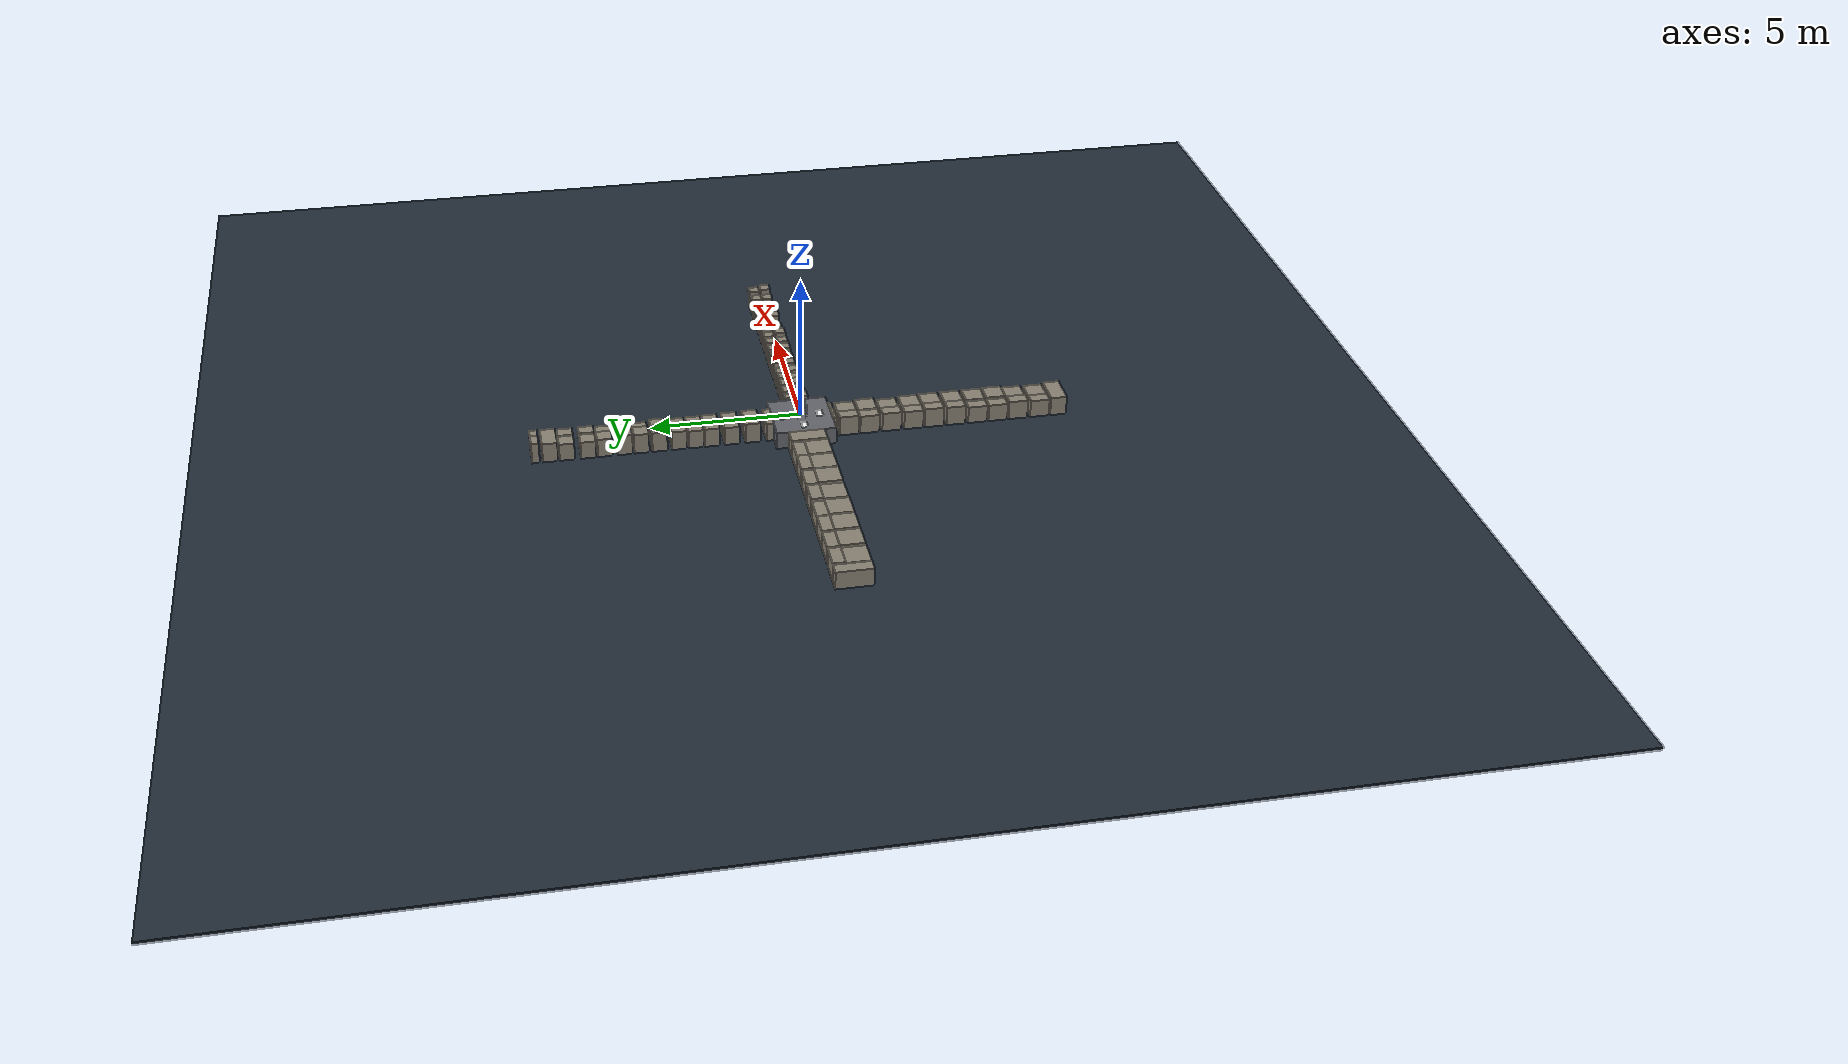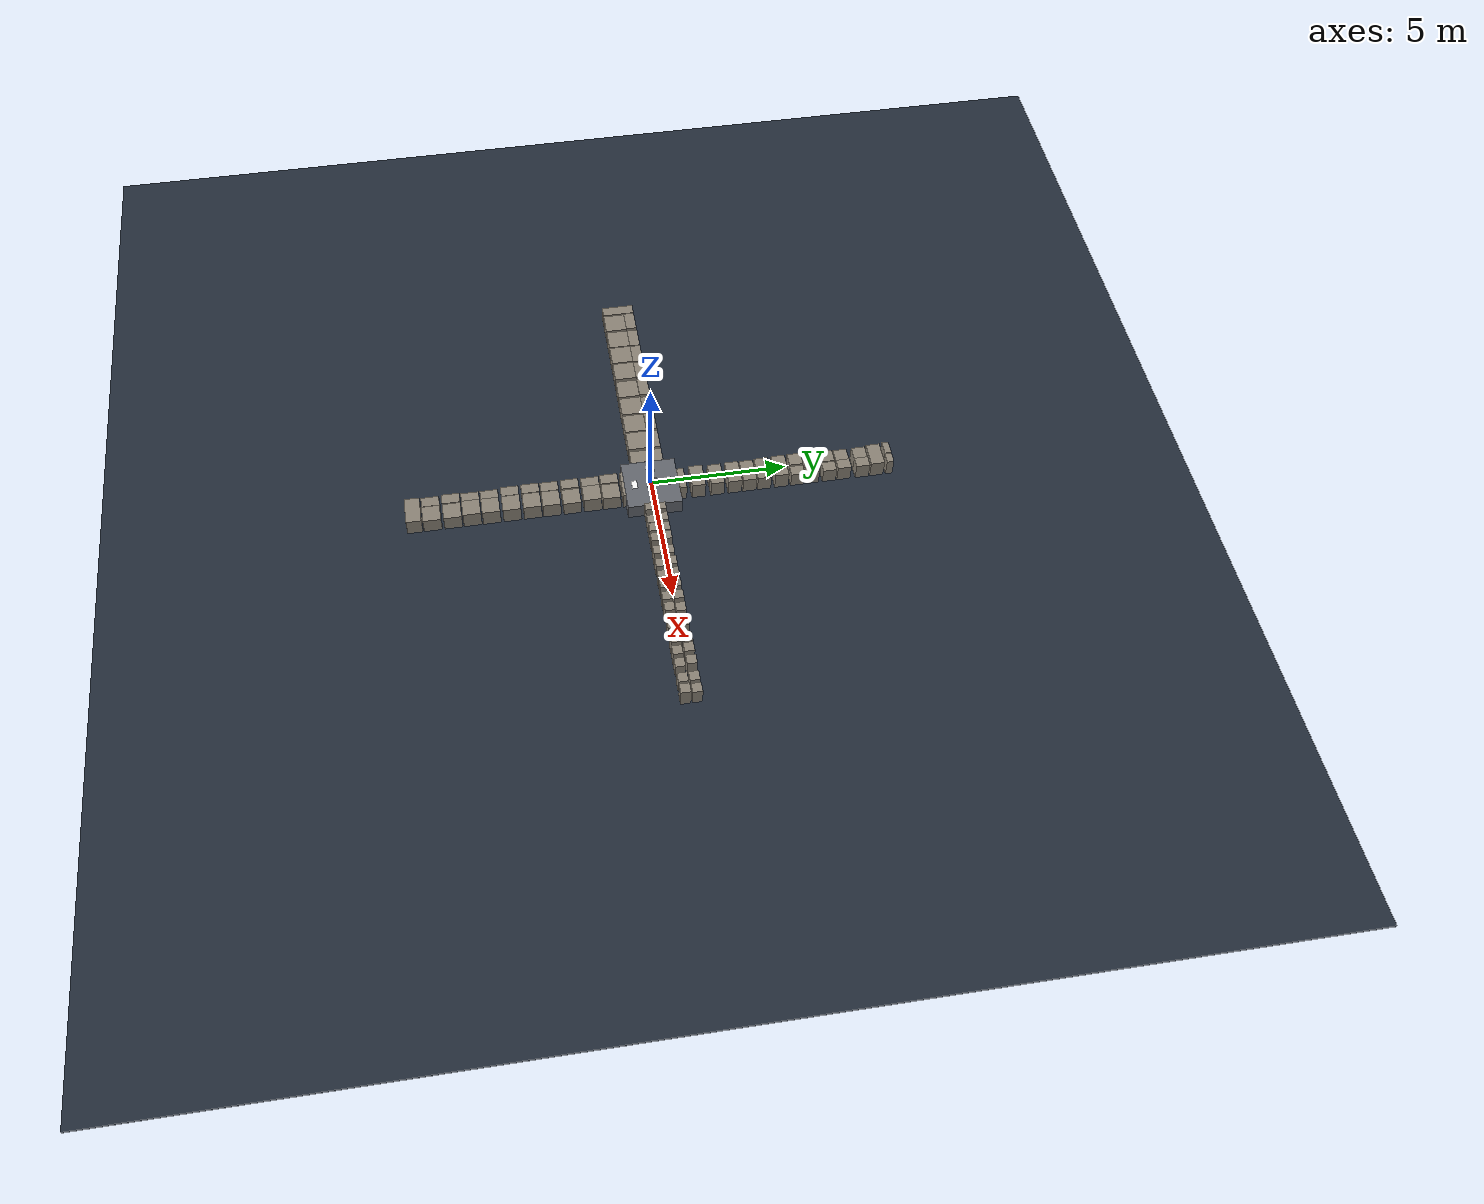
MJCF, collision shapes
<mujoco model="two_row_stones_cross_1_4_7_10">
  <include file="go2.xml"/>
  <statistic center="0 0 0.12" extent="1.35" />
  <visual>
    <headlight diffuse="0.6 0.6 0.6" ambient="0.3 0.3 0.3" specular="0 0 0" />
    <rgba haze="0.15 0.25 0.35 1" />
    <global azimuth="-130" elevation="-20" />
  </visual>
  <asset>
    <texture type="skybox" builtin="gradient" rgb1="0.3 0.5 0.7" rgb2="0 0 0" width="512" height="3072" />
    <texture type="2d" name="groundplane" builtin="checker" mark="edge" rgb1="0.18 0.22 0.28" rgb2="0.10 0.14 0.18" markrgb="0.8 0.8 0.8" width="300" height="300" />
    <material name="groundplane" texture="groundplane" texuniform="true" texrepeat="5 5" reflectance="0.0" />
    <texture name="tex_label_1" type="2d" file="./imgs/label_1.png" />
    <material name="mat_label_1" texture="tex_label_1" specular="0" shininess="0" emission="1" texrepeat="1 1" rgba="1 1 1 1" />
    <texture name="tex_label_7" type="2d" file="./imgs/label_7.png" />
    <material name="mat_label_7" texture="tex_label_7" specular="0" shininess="0" emission="1" texrepeat="1 1" rgba="1 1 1 1" />
    <texture name="tex_label_10" type="2d" file="./imgs/label_10.png" />
    <material name="mat_label_10" texture="tex_label_10" specular="0" shininess="0" emission="1" texrepeat="1 1" rgba="1 1 1 1" />
    <texture name="tex_label_4" type="2d" file="./imgs/label_4.png" />
    <material name="mat_label_4" texture="tex_label_4" specular="0" shininess="0" emission="1" texrepeat="1 1" rgba="1 1 1 1" />
  </asset>
  <worldbody>
    <light pos="0 0 1.5" dir="0 0 -1" directional="true" />

    <geom name="pit_floor" pos="0 0 -0.65" size="20 20 0.05" type="box" material="groundplane" />
    <geom name="hub" pos="0 0 -0.3" type="box" size="1.0 1.0 0.3" rgba="0.40 0.41 0.44 1" />

    <!-- neg_x direction, level 1, curriculum row 0, difficulty=0.0, stone_size=0.80m, gap choices=1..2 cells -->
    <geom name="neg_x_stone_01_merged" pos="-1.275 0 -0.2975" type="box" size="0.275 0.6 0.3025" rgba="0.55 0.52 0.47 1" />
    <geom name="neg_x_stone_02_row_a" pos="-2.05 0.4 -0.2975" type="box" size="0.4 0.2 0.3025" rgba="0.55 0.52 0.47 1" />
    <geom name="neg_x_stone_03_row_b" pos="-2.05 -0.2 -0.29" type="box" size="0.4 0.4 0.31" rgba="0.55 0.52 0.47 1" />
    <geom name="neg_x_stone_04_row_a" pos="-2.9 0.4 -0.2825" type="box" size="0.4 0.2 0.3175" rgba="0.55 0.52 0.47 1" />
    <geom name="neg_x_stone_05_row_b" pos="-2.9 -0.2 -0.29" type="box" size="0.4 0.4 0.31" rgba="0.55 0.52 0.47 1" />
    <geom name="neg_x_stone_06_row_a" pos="-3.75 0.4 -0.2975" type="box" size="0.4 0.2 0.3025" rgba="0.55 0.52 0.47 1" />
    <geom name="neg_x_stone_07_row_b" pos="-3.75 -0.2 -0.2825" type="box" size="0.4 0.4 0.3175" rgba="0.55 0.52 0.47 1" />
    <geom name="neg_x_stone_08_row_a" pos="-4.65 0.4 -0.2825" type="box" size="0.4 0.2 0.3175" rgba="0.55 0.52 0.47 1" />
    <geom name="neg_x_stone_09_row_b" pos="-4.65 -0.2 -0.2975" type="box" size="0.4 0.4 0.3025" rgba="0.55 0.52 0.47 1" />
    <geom name="neg_x_stone_10_row_a" pos="-5.55 0.4 -0.2975" type="box" size="0.4 0.2 0.3025" rgba="0.55 0.52 0.47 1" />
    <geom name="neg_x_stone_11_row_b" pos="-5.55 -0.2 -0.2825" type="box" size="0.4 0.4 0.3175" rgba="0.55 0.52 0.47 1" />
    <geom name="neg_x_stone_12_row_a" pos="-6.4 0.4 -0.29" type="box" size="0.4 0.2 0.31" rgba="0.55 0.52 0.47 1" />
    <geom name="neg_x_stone_13_row_b" pos="-6.4 -0.2 -0.2825" type="box" size="0.4 0.4 0.3175" rgba="0.55 0.52 0.47 1" />
    <geom name="neg_x_stone_14_row_a" pos="-7.25 0.4 -0.2975" type="box" size="0.4 0.2 0.3025" rgba="0.55 0.52 0.47 1" />
    <geom name="neg_x_stone_15_row_b" pos="-7.25 -0.2 -0.29" type="box" size="0.4 0.4 0.31" rgba="0.55 0.52 0.47 1" />
    <geom name="neg_x_stone_16_row_a" pos="-8.15 0.4 -0.2825" type="box" size="0.4 0.2 0.3175" rgba="0.55 0.52 0.47 1" />
    <geom name="neg_x_stone_17_row_b" pos="-8.15 -0.2 -0.2975" type="box" size="0.4 0.4 0.3025" rgba="0.55 0.52 0.47 1" />
    <geom name="neg_x_stone_18_merged" pos="-8.8 0 -0.29" type="box" size="0.2 0.6 0.31" rgba="0.55 0.52 0.47 1" />
    <geom name="neg_x_label" pos="-0.62 0 0.002" type="box" size="0.18 0.1 0.0001" material="mat_label_1" contype="0" conaffinity="0" group="1" rgba="1 1 1 1" />

    <!-- pos_y direction, level 7, curriculum row 6, difficulty=0.6, stone_size=0.50m, gap choices=1..4 cells -->
    <geom name="pos_y_stone_01_row_a" pos="0.25 1.125 -0.2675" type="box" size="0.2 0.125 0.3325" rgba="0.55 0.52 0.47 1" />
    <geom name="pos_y_stone_02_row_b" pos="-0.2 1.125 -0.275" type="box" size="0.25 0.125 0.325" rgba="0.55 0.52 0.47 1" />
    <geom name="pos_y_stone_03_row_a" pos="0.25 1.7 -0.2525" type="box" size="0.2 0.25 0.3475" rgba="0.55 0.52 0.47 1" />
    <geom name="pos_y_stone_04_row_b" pos="-0.2 1.7 -0.245" type="box" size="0.25 0.25 0.355" rgba="0.55 0.52 0.47 1" />
    <geom name="pos_y_stone_05_row_a" pos="0.25 2.4 -0.26" type="box" size="0.2 0.25 0.34" rgba="0.55 0.52 0.47 1" />
    <geom name="pos_y_stone_06_row_b" pos="-0.2 2.4 -0.275" type="box" size="0.25 0.25 0.325" rgba="0.55 0.52 0.47 1" />
    <geom name="pos_y_stone_07_merged" pos="0 3.05 -0.2675" type="box" size="0.45 0.25 0.3325" rgba="0.55 0.52 0.47 1" />
    <geom name="pos_y_stone_08_merged" pos="0 3.6 -0.275" type="box" size="0.45 0.25 0.325" rgba="0.55 0.52 0.47 1" />
    <geom name="pos_y_stone_09_row_a" pos="0.25 4.15 -0.275" type="box" size="0.2 0.25 0.325" rgba="0.55 0.52 0.47 1" />
    <geom name="pos_y_stone_10_row_b" pos="-0.2 4.15 -0.26" type="box" size="0.25 0.25 0.34" rgba="0.55 0.52 0.47 1" />
    <geom name="pos_y_stone_11_row_a" pos="0.25 4.8 -0.2525" type="box" size="0.2 0.25 0.3475" rgba="0.55 0.52 0.47 1" />
    <geom name="pos_y_stone_12_row_b" pos="-0.2 4.8 -0.245" type="box" size="0.25 0.25 0.355" rgba="0.55 0.52 0.47 1" />
    <geom name="pos_y_stone_13_row_a" pos="0.25 5.4 -0.29" type="box" size="0.2 0.25 0.31" rgba="0.55 0.52 0.47 1" />
    <geom name="pos_y_stone_14_row_b" pos="-0.2 5.4 -0.245" type="box" size="0.25 0.25 0.355" rgba="0.55 0.52 0.47 1" />
    <geom name="pos_y_stone_15_row_a" pos="0.25 5.95 -0.2825" type="box" size="0.2 0.25 0.3175" rgba="0.55 0.52 0.47 1" />
    <geom name="pos_y_stone_16_row_b" pos="-0.2 5.95 -0.2375" type="box" size="0.25 0.25 0.3625" rgba="0.55 0.52 0.47 1" />
    <geom name="pos_y_stone_17_row_a" pos="0.25 6.6 -0.29" type="box" size="0.2 0.25 0.31" rgba="0.55 0.52 0.47 1" />
    <geom name="pos_y_stone_18_row_b" pos="-0.2 6.6 -0.2675" type="box" size="0.25 0.25 0.3325" rgba="0.55 0.52 0.47 1" />
    <geom name="pos_y_stone_19_row_a" pos="0.25 7.15 -0.2675" type="box" size="0.2 0.25 0.3325" rgba="0.55 0.52 0.47 1" />
    <geom name="pos_y_stone_20_row_b" pos="-0.2 7.15 -0.29" type="box" size="0.25 0.25 0.31" rgba="0.55 0.52 0.47 1" />
    <geom name="pos_y_stone_21_row_a" pos="0.25 7.85 -0.275" type="box" size="0.2 0.25 0.325" rgba="0.55 0.52 0.47 1" />
    <geom name="pos_y_stone_22_row_b" pos="-0.2 7.85 -0.29" type="box" size="0.25 0.25 0.31" rgba="0.55 0.52 0.47 1" />
    <geom name="pos_y_stone_23_merged" pos="0 8.4 -0.2525" type="box" size="0.45 0.25 0.3475" rgba="0.55 0.52 0.47 1" />
    <geom name="pos_y_stone_24_row_a" pos="0.25 8.875 -0.2525" type="box" size="0.2 0.125 0.3475" rgba="0.55 0.52 0.47 1" />
    <geom name="pos_y_stone_25_row_b" pos="-0.2 8.875 -0.23" type="box" size="0.25 0.125 0.37" rgba="0.55 0.52 0.47 1" />
    <geom name="pos_y_label" pos="0 0.62 0.002" type="box" size="0.1 0.18 0.0001" material="mat_label_7" quat="0.7071067811865476 0 0 0.7071067811865475" contype="0" conaffinity="0" group="1" rgba="1 1 1 1" />

    <!-- pos_x direction, level 10, curriculum row 9, difficulty=0.9, stone_size=0.35m, gap choices=1..6 cells -->
    <geom name="pos_x_stone_01_row_a" pos="1.15 -0.225 -0.2375" type="box" size="0.15 0.175 0.3625" rgba="0.55 0.52 0.47 1" />
    <geom name="pos_x_stone_02_row_b" pos="1.15 0.175 -0.26" type="box" size="0.15 0.175 0.34" rgba="0.55 0.52 0.47 1" />
    <geom name="pos_x_stone_03_row_a" pos="1.625 -0.225 -0.2975" type="box" size="0.175 0.175 0.3025" rgba="0.55 0.52 0.47 1" />
    <geom name="pos_x_stone_04_row_b" pos="1.625 0.175 -0.26" type="box" size="0.175 0.175 0.34" rgba="0.55 0.52 0.47 1" />
    <geom name="pos_x_stone_05_row_a" pos="2.075 -0.225 -0.2375" type="box" size="0.175 0.175 0.3625" rgba="0.55 0.52 0.47 1" />
    <geom name="pos_x_stone_06_row_b" pos="2.075 0.175 -0.2525" type="box" size="0.175 0.175 0.3475" rgba="0.55 0.52 0.47 1" />
    <geom name="pos_x_stone_07_row_a" pos="2.475 -0.225 -0.2675" type="box" size="0.175 0.175 0.3325" rgba="0.55 0.52 0.47 1" />
    <geom name="pos_x_stone_08_row_b" pos="2.475 0.175 -0.245" type="box" size="0.175 0.175 0.355" rgba="0.55 0.52 0.47 1" />
    <geom name="pos_x_stone_09_row_a" pos="3.025 -0.225 -0.275" type="box" size="0.175 0.175 0.325" rgba="0.55 0.52 0.47 1" />
    <geom name="pos_x_stone_10_row_b" pos="3.025 0.175 -0.2975" type="box" size="0.175 0.175 0.3025" rgba="0.55 0.52 0.47 1" />
    <geom name="pos_x_stone_11_row_a" pos="3.575 -0.225 -0.29" type="box" size="0.175 0.175 0.31" rgba="0.55 0.52 0.47 1" />
    <geom name="pos_x_stone_12_row_b" pos="3.575 0.175 -0.2525" type="box" size="0.175 0.175 0.3475" rgba="0.55 0.52 0.47 1" />
    <geom name="pos_x_stone_13_row_a" pos="4.075 -0.225 -0.2975" type="box" size="0.175 0.175 0.3025" rgba="0.55 0.52 0.47 1" />
    <geom name="pos_x_stone_14_row_b" pos="4.075 0.175 -0.2525" type="box" size="0.175 0.175 0.3475" rgba="0.55 0.52 0.47 1" />
    <geom name="pos_x_stone_15_row_a" pos="4.525 -0.225 -0.2525" type="box" size="0.175 0.175 0.3475" rgba="0.55 0.52 0.47 1" />
    <geom name="pos_x_stone_16_row_b" pos="4.525 0.175 -0.2675" type="box" size="0.175 0.175 0.3325" rgba="0.55 0.52 0.47 1" />
    <geom name="pos_x_stone_17_row_a" pos="5.025 -0.225 -0.26" type="box" size="0.175 0.175 0.34" rgba="0.55 0.52 0.47 1" />
    <geom name="pos_x_stone_18_row_b" pos="5.025 0.175 -0.2675" type="box" size="0.175 0.175 0.3325" rgba="0.55 0.52 0.47 1" />
    <geom name="pos_x_stone_19_row_a" pos="5.525 -0.225 -0.23" type="box" size="0.175 0.175 0.37" rgba="0.55 0.52 0.47 1" />
    <geom name="pos_x_stone_20_row_b" pos="5.525 0.175 -0.2825" type="box" size="0.175 0.175 0.3175" rgba="0.55 0.52 0.47 1" />
    <geom name="pos_x_stone_21_row_a" pos="6.175 -0.225 -0.2975" type="box" size="0.175 0.175 0.3025" rgba="0.55 0.52 0.47 1" />
    <geom name="pos_x_stone_22_row_b" pos="6.175 0.175 -0.245" type="box" size="0.175 0.175 0.355" rgba="0.55 0.52 0.47 1" />
    <geom name="pos_x_stone_23_row_a" pos="6.825 -0.225 -0.2375" type="box" size="0.175 0.175 0.3625" rgba="0.55 0.52 0.47 1" />
    <geom name="pos_x_stone_24_row_b" pos="6.825 0.175 -0.2375" type="box" size="0.175 0.175 0.3625" rgba="0.55 0.52 0.47 1" />
    <geom name="pos_x_stone_25_row_a" pos="7.225 -0.225 -0.2975" type="box" size="0.175 0.175 0.3025" rgba="0.55 0.52 0.47 1" />
    <geom name="pos_x_stone_26_row_b" pos="7.225 0.175 -0.245" type="box" size="0.175 0.175 0.355" rgba="0.55 0.52 0.47 1" />
    <geom name="pos_x_stone_27_row_a" pos="7.725 -0.225 -0.2975" type="box" size="0.175 0.175 0.3025" rgba="0.55 0.52 0.47 1" />
    <geom name="pos_x_stone_28_row_b" pos="7.725 0.175 -0.245" type="box" size="0.175 0.175 0.355" rgba="0.55 0.52 0.47 1" />
    <geom name="pos_x_stone_29_row_a" pos="8.325 -0.225 -0.29" type="box" size="0.175 0.175 0.31" rgba="0.55 0.52 0.47 1" />
    <geom name="pos_x_stone_30_row_b" pos="8.325 0.175 -0.29" type="box" size="0.175 0.175 0.31" rgba="0.55 0.52 0.47 1" />
    <geom name="pos_x_stone_31_row_a" pos="8.825 -0.225 -0.23" type="box" size="0.175 0.175 0.37" rgba="0.55 0.52 0.47 1" />
    <geom name="pos_x_stone_32_row_b" pos="8.825 0.175 -0.26" type="box" size="0.175 0.175 0.34" rgba="0.55 0.52 0.47 1" />
    <geom name="pos_x_label" pos="0.62 0 0.002" type="box" size="0.18 0.1 0.0001" material="mat_label_10" contype="0" conaffinity="0" group="1" rgba="1 1 1 1" />

    <!-- neg_y direction, level 4, curriculum row 3, difficulty=0.3, stone_size=0.65m, gap choices=1..2 cells -->
    <geom name="neg_y_stone_01_row_a" pos="-0.35 -1.05 -0.2525" type="box" size="0.2 0.05 0.3475" rgba="0.55 0.52 0.47 1" />
    <geom name="neg_y_stone_02_row_b" pos="0.175 -1.05 -0.2675" type="box" size="0.325 0.05 0.3325" rgba="0.55 0.52 0.47 1" />
    <geom name="neg_y_stone_03_row_a" pos="-0.35 -1.525 -0.2525" type="box" size="0.2 0.325 0.3475" rgba="0.55 0.52 0.47 1" />
    <geom name="neg_y_stone_04_row_b" pos="0.175 -1.525 -0.2825" type="box" size="0.325 0.325 0.3175" rgba="0.55 0.52 0.47 1" />
    <geom name="neg_y_stone_05_row_a" pos="-0.35 -2.225 -0.275" type="box" size="0.2 0.325 0.325" rgba="0.55 0.52 0.47 1" />
    <geom name="neg_y_stone_06_row_b" pos="0.175 -2.225 -0.26" type="box" size="0.325 0.325 0.34" rgba="0.55 0.52 0.47 1" />
    <geom name="neg_y_stone_07_row_a" pos="-0.35 -2.975 -0.26" type="box" size="0.2 0.325 0.34" rgba="0.55 0.52 0.47 1" />
    <geom name="neg_y_stone_08_row_b" pos="0.175 -2.975 -0.2975" type="box" size="0.325 0.325 0.3025" rgba="0.55 0.52 0.47 1" />
    <geom name="neg_y_stone_09_row_a" pos="-0.35 -3.725 -0.2675" type="box" size="0.2 0.325 0.3325" rgba="0.55 0.52 0.47 1" />
    <geom name="neg_y_stone_10_row_b" pos="0.175 -3.725 -0.275" type="box" size="0.325 0.325 0.325" rgba="0.55 0.52 0.47 1" />
    <geom name="neg_y_stone_11_row_a" pos="-0.35 -4.425 -0.2525" type="box" size="0.2 0.325 0.3475" rgba="0.55 0.52 0.47 1" />
    <geom name="neg_y_stone_12_row_b" pos="0.175 -4.425 -0.2675" type="box" size="0.325 0.325 0.3325" rgba="0.55 0.52 0.47 1" />
    <geom name="neg_y_stone_13_row_a" pos="-0.35 -5.175 -0.26" type="box" size="0.2 0.325 0.34" rgba="0.55 0.52 0.47 1" />
    <geom name="neg_y_stone_14_row_b" pos="0.175 -5.175 -0.2675" type="box" size="0.325 0.325 0.3325" rgba="0.55 0.52 0.47 1" />
    <geom name="neg_y_stone_15_row_a" pos="-0.35 -5.925 -0.2975" type="box" size="0.2 0.325 0.3025" rgba="0.55 0.52 0.47 1" />
    <geom name="neg_y_stone_16_row_b" pos="0.175 -5.925 -0.2675" type="box" size="0.325 0.325 0.3325" rgba="0.55 0.52 0.47 1" />
    <geom name="neg_y_stone_17_row_a" pos="-0.35 -6.625 -0.2975" type="box" size="0.2 0.325 0.3025" rgba="0.55 0.52 0.47 1" />
    <geom name="neg_y_stone_18_row_b" pos="0.175 -6.625 -0.26" type="box" size="0.325 0.325 0.34" rgba="0.55 0.52 0.47 1" />
    <geom name="neg_y_stone_19_row_a" pos="-0.35 -7.325 -0.2675" type="box" size="0.2 0.325 0.3325" rgba="0.55 0.52 0.47 1" />
    <geom name="neg_y_stone_20_row_b" pos="0.175 -7.325 -0.29" type="box" size="0.325 0.325 0.31" rgba="0.55 0.52 0.47 1" />
    <geom name="neg_y_stone_21_row_a" pos="-0.35 -8.075 -0.29" type="box" size="0.2 0.325 0.31" rgba="0.55 0.52 0.47 1" />
    <geom name="neg_y_stone_22_row_b" pos="0.175 -8.075 -0.2975" type="box" size="0.325 0.325 0.3025" rgba="0.55 0.52 0.47 1" />
    <geom name="neg_y_stone_23_merged" pos="-0.025 -8.725 -0.2675" type="box" size="0.525 0.275 0.3325" rgba="0.55 0.52 0.47 1" />
    <geom name="neg_y_label" pos="0 -0.62 0.002" type="box" size="0.1 0.18 0.0001" material="mat_label_4" quat="0.7071067811865476 0 0 -0.7071067811865475" contype="0" conaffinity="0" group="1" rgba="1 1 1 1" />
  </worldbody>
</mujoco>

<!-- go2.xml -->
<mujoco model="go2">
  <compiler angle="radian" meshdir="assets" autolimits="true"/>

  <option cone="elliptic" impratio="100" timestep="0.02"/>

  <default>
    <default class="go2">
      <geom friction="0.6" margin="0.001" condim="1"/>
      <joint axis="0 1 0" damping="0.5" armature="0.01" frictionloss="0.2"/>
      <position forcerange="-23.7 23.7" kp="35"/>
      <default class="abduction">
        <joint axis="1 0 0" range="-1.0472 1.0472"/>
      </default>
      <default class="hip">
        <default class="front_hip">
          <joint range="-1.5708 3.4907"/>
        </default>
        <default class="back_hip">
          <joint range="-0.5236 4.5379"/>
        </default>
      </default>
      <default class="knee">
        <joint range="-2.7227 -0.83776"/>
        <position forcerange="-45.43 45.43"/>
      </default>
      <default class="visual">
        <geom type="mesh" contype="0" conaffinity="0" group="2"/>
      </default>
      <default class="collision">
        <geom group="3"  contype="1" conaffinity="2"/>
        <default class="foot">
          <geom size="0.022" pos="-0.002 0 -0.213" priority="1" condim="6"
            friction="0.4 0.02 0.01"/>
        </default>
      </default>
    </default>
  </default>

  <asset>
    <material name="metal" rgba=".9 .95 .95 1"/>
    <material name="black" rgba="0 0 0 1"/>
    <material name="white" rgba="1 1 1 1"/>
    <material name="gray" rgba="0.671705 0.692426 0.774270 1"/>

    <mesh file="base_0.obj"/>
    <mesh file="base_1.obj"/>
    <mesh file="base_2.obj"/>
    <mesh file="base_3.obj"/>
    <mesh file="base_4.obj"/>
    <mesh file="hip_0.obj"/>
    <mesh file="hip_1.obj"/>
    <mesh file="thigh_0.obj"/>
    <mesh file="thigh_1.obj"/>
    <mesh file="thigh_mirror_0.obj"/>
    <mesh file="thigh_mirror_1.obj"/>
    <mesh file="calf_0.obj"/>
    <mesh file="calf_1.obj"/>
    <mesh file="calf_mirror_0.obj"/>
    <mesh file="calf_mirror_1.obj"/>
    <mesh file="foot.obj"/>
  </asset>

  <worldbody>
    <body name="base" pos="0 0 0.445" childclass="go2">
      <inertial pos="0.021112 0 -0.005366" quat="-0.000543471 0.713435 -0.00173769 0.700719" mass="6.921"
        diaginertia="0.107027 0.0980771 0.0244531"/>
      <freejoint/>
      <geom mesh="base_0" material="black" class="visual"/>
      <geom mesh="base_1" material="black" class="visual"/>
      <geom mesh="base_2" material="black" class="visual"/>
      <geom mesh="base_3" material="white" class="visual"/>
      <geom mesh="base_4" material="gray" class="visual"/>
      <geom name="base1" size="0.1881 0.04675 0.057" type="box" class="collision"/>
      <geom name="base2" size="0.05 0.045" pos="0.285 0 0.01" type="cylinder" class="collision"/>
      <geom name="base3" size="0.047" pos="0.293 0 -0.06" class="collision"/>
      <site name="imu" pos="-0.02557 0 0.04232"/>
      <body name="FL_hip" pos="0.1934 0.0465 0">
        <inertial pos="-0.0054 0.00194 -0.000105" quat="0.497014 0.499245 0.505462 0.498237" mass="0.678"
          diaginertia="0.00088403 0.000596003 0.000479967"/>
        <joint name="FL_hip_joint" class="abduction"/>
        <geom mesh="hip_0" material="metal" class="visual"/>
        <geom mesh="hip_1" material="gray" class="visual"/>
        <geom name="FL_hip_geom" size="0.046 0.02" pos="0 0.08 0" quat="1 1 0 0" type="cylinder" class="collision"/>
        <body name="FL_thigh" pos="0 0.0955 0">
          <inertial pos="-0.00374 -0.0223 -0.0327" quat="0.829533 0.0847635 -0.0200632 0.551623" mass="1.152"
            diaginertia="0.00594973 0.00584149 0.000878787"/>
          <joint name="FL_thigh_joint" class="front_hip"/>
          <geom mesh="thigh_0" material="metal" class="visual"/>
          <geom mesh="thigh_1" material="gray" class="visual"/>
          <geom name="FL_thigh_geom" size="0.1065 0.01225 0.017" pos="0 0 -0.1065" quat="0.707107 0 0.707107 0" type="box" class="collision"/>
          <body name="FL_calf" pos="0 0 -0.213">
            <inertial pos="0.00629595 -0.000622121 -0.141417" quat="0.710672 0.00154099 -0.00450087 0.703508"
              mass="0.241352" diaginertia="0.0014901 0.00146356 5.31397e-05"/>
            <joint name="FL_calf_joint" class="knee"/>
            <geom mesh="calf_0" material="gray" class="visual"/>
            <geom mesh="calf_1" material="black" class="visual"/>
            <geom name="FL_calf_geom1" size="0.012 0.06" pos="0.008 0 -0.06" quat="0.994493 0 -0.104807 0" type="cylinder" class="collision"/>
            <geom name="FL_calf_geom2" size="0.011 0.0325" pos="0.02 0 -0.148" quat="0.999688 0 0.0249974 0" type="cylinder" class="collision"/>
            <geom pos="0 0 -0.213" mesh="foot" class="visual" material="black"/>
            <geom name="FL" class="foot"/>
          </body>
        </body>
      </body>
      <body name="FR_hip" pos="0.1934 -0.0465 0">
        <inertial pos="-0.0054 -0.00194 -0.000105" quat="0.498237 0.505462 0.499245 0.497014" mass="0.678"
          diaginertia="0.00088403 0.000596003 0.000479967"/>
        <joint name="FR_hip_joint" class="abduction"/>
        <geom mesh="hip_0" material="metal" class="visual" quat="4.63268e-05 1 0 0"/>
        <geom mesh="hip_1" material="gray" class="visual" quat="4.63268e-05 1 0 0"/>
        <geom name="FR_hip_geom" size="0.046 0.02" pos="0 -0.08 0" quat="0.707107 0.707107 0 0" type="cylinder" class="collision"/>
        <body name="FR_thigh" pos="0 -0.0955 0">
          <inertial pos="-0.00374 0.0223 -0.0327" quat="0.551623 -0.0200632 0.0847635 0.829533" mass="1.152"
            diaginertia="0.00594973 0.00584149 0.000878787"/>
          <joint name="FR_thigh_joint" class="front_hip"/>
          <geom mesh="thigh_mirror_0" material="metal" class="visual"/>
          <geom mesh="thigh_mirror_1" material="gray" class="visual"/>
          <geom name="FR_thigh_geom" size="0.1065 0.01225 0.017" pos="0 0 -0.1065" quat="0.707107 0 0.707107 0" type="box" class="collision"/>
          <body name="FR_calf" pos="0 0 -0.213">
            <inertial pos="0.00629595 0.000622121 -0.141417" quat="0.703508 -0.00450087 0.00154099 0.710672"
              mass="0.241352" diaginertia="0.0014901 0.00146356 5.31397e-05"/>
            <joint name="FR_calf_joint" class="knee"/>
            <geom mesh="calf_mirror_0" material="gray" class="visual"/>
            <geom mesh="calf_mirror_1" material="black" class="visual"/>
            <geom name="FR_calf_geom1" size="0.013 0.06" pos="0.01 0 -0.06" quat="0.995004 0 -0.0998334 0" type="cylinder" class="collision"/>
            <geom name="FR_calf_geom2" size="0.011 0.0325" pos="0.02 0 -0.148" quat="0.999688 0 0.0249974 0" type="cylinder" class="collision"/>
            <geom pos="0 0 -0.213" mesh="foot" class="visual" material="black"/>
            <geom name="FR" class="foot"/>
          </body>
        </body>
      </body>
      <body name="RL_hip" pos="-0.1934 0.0465 0">
        <inertial pos="0.0054 0.00194 -0.000105" quat="0.505462 0.498237 0.497014 0.499245" mass="0.678"
          diaginertia="0.00088403 0.000596003 0.000479967"/>
        <joint name="RL_hip_joint" class="abduction"/>
        <geom mesh="hip_0" material="metal" class="visual" quat="4.63268e-05 0 1 0"/>
        <geom mesh="hip_1" material="gray" class="visual" quat="4.63268e-05 0 1 0"/>
        <geom name="RL_hip_geom" size="0.046 0.02" pos="0 0.08 0" quat="0.707107 0.707107 0 0" type="cylinder" class="collision"/>
        <body name="RL_thigh" pos="0 0.0955 0">
          <inertial pos="-0.00374 -0.0223 -0.0327" quat="0.829533 0.0847635 -0.0200632 0.551623" mass="1.152"
            diaginertia="0.00594973 0.00584149 0.000878787"/>
          <joint name="RL_thigh_joint" class="back_hip"/>
          <geom mesh="thigh_0" material="metal" class="visual"/>
          <geom mesh="thigh_1" material="gray" class="visual"/>
          <geom name="RL_thigh_geom" size="0.1065 0.01225 0.017" pos="0 0 -0.1065" quat="0.707107 0 0.707107 0" type="box" class="collision"/>
          <body name="RL_calf" pos="0 0 -0.213">
            <inertial pos="0.00629595 -0.000622121 -0.141417" quat="0.710672 0.00154099 -0.00450087 0.703508"
              mass="0.241352" diaginertia="0.0014901 0.00146356 5.31397e-05"/>
            <joint name="RL_calf_joint" class="knee"/>
            <geom mesh="calf_0" material="gray" class="visual"/>
            <geom mesh="calf_1" material="black" class="visual"/>
            <geom name="RL_calf_geom1" size="0.013 0.06" pos="0.01 0 -0.06" quat="0.995004 0 -0.0998334 0" type="cylinder" class="collision"/>
            <geom name="RL_calf_geom2" size="0.011 0.0325" pos="0.02 0 -0.148" quat="0.999688 0 0.0249974 0" type="cylinder" class="collision"/>
            <geom pos="0 0 -0.213" mesh="foot" class="visual" material="black"/>
            <geom name="RL" class="foot"/>
          </body>
        </body>
      </body>
      <body name="RR_hip" pos="-0.1934 -0.0465 0">
        <inertial pos="0.0054 -0.00194 -0.000105" quat="0.499245 0.497014 0.498237 0.505462" mass="0.678"
          diaginertia="0.00088403 0.000596003 0.000479967"/>
        <joint name="RR_hip_joint" class="abduction"/>
        <geom mesh="hip_0" material="metal" class="visual" quat="2.14617e-09 4.63268e-05 4.63268e-05 -1"/>
        <geom mesh="hip_1" material="gray" class="visual" quat="2.14617e-09 4.63268e-05 4.63268e-05 -1"/>
        <geom name="RR_hip_geom" size="0.046 0.02" pos="0 -0.08 0" quat="0.707107 0.707107 0 0" type="cylinder" class="collision"/>
        <body name="RR_thigh" pos="0 -0.0955 0">
          <inertial pos="-0.00374 0.0223 -0.0327" quat="0.551623 -0.0200632 0.0847635 0.829533" mass="1.152"
            diaginertia="0.00594973 0.00584149 0.000878787"/>
          <joint name="RR_thigh_joint" class="back_hip"/>
          <geom mesh="thigh_mirror_0" material="metal" class="visual"/>
          <geom mesh="thigh_mirror_1" material="gray" class="visual"/>
          <geom name="RR_thigh_geom" size="0.1065 0.01225 0.017" pos="0 0 -0.1065" quat="0.707107 0 0.707107 0" type="box" class="collision"/>
          <body name="RR_calf" pos="0 0 -0.213">
            <inertial pos="0.00629595 0.000622121 -0.141417" quat="0.703508 -0.00450087 0.00154099 0.710672"
              mass="0.241352" diaginertia="0.0014901 0.00146356 5.31397e-05"/>
            <joint name="RR_calf_joint" class="knee"/>
            <geom mesh="calf_mirror_0" material="gray" class="visual"/>
            <geom mesh="calf_mirror_1" material="black" class="visual"/>
            <geom name="RR_calf_geom1" size="0.013 0.06" pos="0.01 0 -0.06" quat="0.995004 0 -0.0998334 0" type="cylinder" class="collision"/>
            <geom name="RR_calf_geom2" size="0.011 0.0325" pos="0.02 0 -0.148" quat="0.999688 0 0.0249974 0" type="cylinder" class="collision"/>
            <geom pos="0 0 -0.213" mesh="foot" class="visual" material="black"/>
            <geom name="RR" class="foot"/>
          </body>
        </body>
      </body>
    </body>
  </worldbody>

  <actuator>
    <position class="abduction" name="FR_hip" joint="FR_hip_joint"/>
    <position class="hip" name="FR_thigh" joint="FR_thigh_joint"/>
    <position class="knee" name="FR_calf" joint="FR_calf_joint"/>
    <position class="abduction" name="FL_hip" joint="FL_hip_joint"/>
    <position class="hip" name="FL_thigh" joint="FL_thigh_joint"/>
    <position class="knee" name="FL_calf" joint="FL_calf_joint"/>
    <position class="abduction" name="RR_hip" joint="RR_hip_joint"/>
    <position class="hip" name="RR_thigh" joint="RR_thigh_joint"/>
    <position class="knee" name="RR_calf" joint="RR_calf_joint"/>
    <position class="abduction" name="RL_hip" joint="RL_hip_joint"/>
    <position class="hip" name="RL_thigh" joint="RL_thigh_joint"/>
    <position class="knee" name="RL_calf" joint="RL_calf_joint"/>
  </actuator>

  <sensor>

    <gyro site="imu" name="gyro"/>
    <accelerometer site="imu" name="accelerometer"/>
    <velocimeter site="imu" name="local_linvel"/>
    <framezaxis objtype="site" objname="imu" name="upvector"/>

    <framepos objtype="site" objname="imu" name="global_position"/>
    <framelinvel objtype="site" objname="imu" name="global_linvel"/>
    <frameangvel objtype="site" objname="imu" name="global_angvel"/>

    <framepos objtype="geom" objname="FR" name="FR_pos"/>
    <framepos objtype="geom" objname="FL" name="FL_pos"/>
    <framepos objtype="geom" objname="RR" name="RR_pos"/>
    <framepos objtype="geom" objname="RL" name="RL_pos"/>

    <framelinvel objtype="geom" objname="FR" name="FR_vel"/>
    <framelinvel objtype="geom" objname="FL" name="FL_vel"/>
    <framelinvel objtype="geom" objname="RR" name="RR_vel"/>
    <framelinvel objtype="geom" objname="RL" name="RL_vel"/>
  </sensor>

  <keyframe>
    <key name="home" qpos="
        0 0 0.3  1 0 0 0
        0 0.8 -1.5
        0 0.8 -1.5
        0 1 -1.5
        0 1 -1.5"
      ctrl="
        0 0.8 -1.5
        0 0.8 -1.5
        0 1 -1.5
        0 1 -1.5"/>
  </keyframe>

</mujoco>
